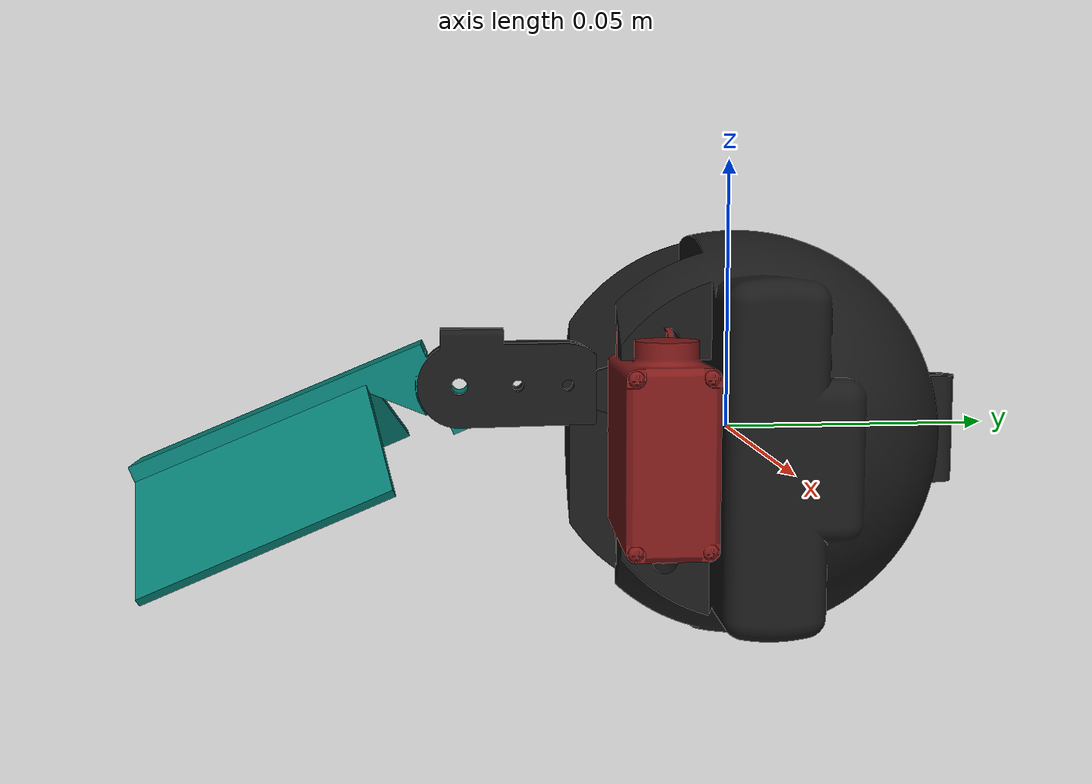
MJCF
<mujoco model="modular">

  <!-- Assets -->
  <include file="asset.xml"/>

  <!-- Robot model -->
  <worldbody>
    <!-- Main body -->
    <body name="main_body" pos="-0.015 0 0" quat="0.7071068 0 -0.7071068 0" gravcomp="1.0">
      <site name="COM" pos="0 0 -2.4e-2" quat="0.7071068 0 0.7071068 0" rgba=".1 .5 .1 1"/>
      <geom class="PLA" type="mesh" mesh="main_body" rgba=".1 .1 .1 1"
            contype="1" conaffinity="2"/>

      <!-- Cap -->
      <body name="cap" pos="0 0 0.001" quat="1 0 0 0" gravcomp="0.95">
        <geom class="PLA" type="mesh" mesh="cap" rgba=".1 .1 .1 1"
              contype="1" conaffinity="2"/>
      </body>

      <!-- Servo Motor -->
      <body name="motor" pos="0 -0.017 -0.055" quat="0.7071068 0.7071068 0 0" gravcomp="0.95">
        <geom class="PLA" type="mesh" mesh="motor" rgba=".5 .1 .1 1"
              contype="2" conaffinity="1"/>
        <!-- Paddle Arm -->
        <body name="motor_paddle" pos="0.008 0.035 0" quat="-0.5 -0.5 -0.5 0.5" gravcomp="0.95">
          <joint name="motor_hinge" pos="0 0 0" axis= "0 0 1" range="-0.7854 0.7854" limited="true"/>
          <geom class="PLA" type="mesh" mesh="motor_paddle" rgba=".1 .1 .1 1"
                contype="2" conaffinity="1"/>
          <!-- Arm -->
          <body name="flA" pos="-0.025 0 0.003" quat="1 0 0 0" gravcomp="0.95">
            <geom class="PLA" type="mesh" mesh="flA" rgba=".1 .1 .1 1"
                  contype="2" conaffinity="1"/>
          </body>
          <body name="flB" pos="-0.025 0 -0.003" quat="1 0 0 0" gravcomp="0.95">
            <geom class="PLA" type="mesh" mesh="flB" rgba=".1 .1 .1 1"
                  contype="2" conaffinity="1"/>
          </body>
          <!-- Paddle -->
          <body name="paddle" pos="-0.0335 0.0015 0" quat="0.5555702 0 0 0.8314696" gravcomp="0.95">
            <joint  name="paddle_hinge" pos="0 0 0" axis= "0 0 1" range="-0.3927 0.3927" limited="true"
                    solreflimit="1e-2 1" solimplimit=".90 .95 1e-1"/>
            <geom class="PLA" type="mesh" mesh="paddle" rgba="0.02 0.5 0.46 1"
                  contype="2" conaffinity="1" fluidshape="ellipsoid" fluidcoef="1.0 1.0 1.5 1.5 1.0"/>
          </body>
        </body>
      </body>
    </body>
  </worldbody>

  <!-- Sensor -->
  <sensor>
    <force name="module_force" site="COM"/>
    <torque name="module_torque" site="COM"/>
  </sensor>

  <!-- Control -->

  <actuator>
    <motor name="motor_tau" joint="motor_hinge" gear="1" ctrlrange="-2 2" ctrllimited="true"/>
  </actuator>

</mujoco>

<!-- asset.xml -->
<mujoco>
	<compiler angle="radian" meshdir="../meshes" autolimits="false"/>
	<compiler autolimits="true"/>

	<!-- Modular robot assets -->
	<asset>
		<mesh name="main_body" 		file="main_body.STL"/>
		<mesh name="flA" 			file="flA.STL"/>
		<mesh name="flB" 			file="flB.STL"/>
		<mesh name="paddle" 		file="paddle.STL"/>
		<mesh name="cap" 			file="cap.STL"/>
		<mesh name="motor" 			file="motor.STL"/>
		<mesh name="motor_paddle" 	file="motor_paddle.STL"/>
	</asset>

	<!-- Material feature -->
	<default class="main">
		<default class="PLA">
			<geom density="1240" rgba=".1 .1 .1 1"/>
		</default>
		<default class="ABS">
			<geom density="1100" rgba=".1 .1 .1 1"/>
		</default>
		<default class="metal">
			<geom density="20000" rgba=".1 .1 .1 1"/>
		</default>

	</default>

</mujoco>
